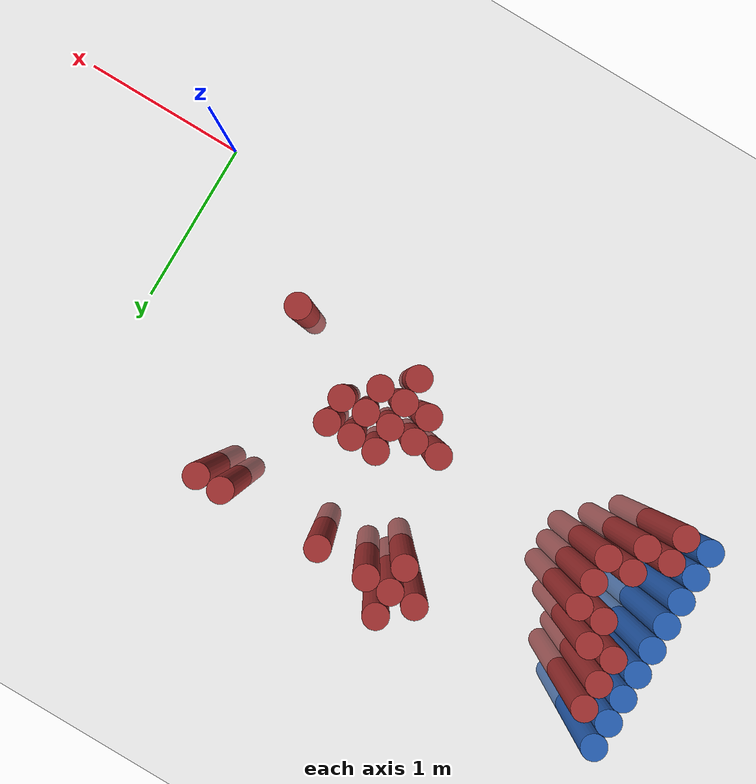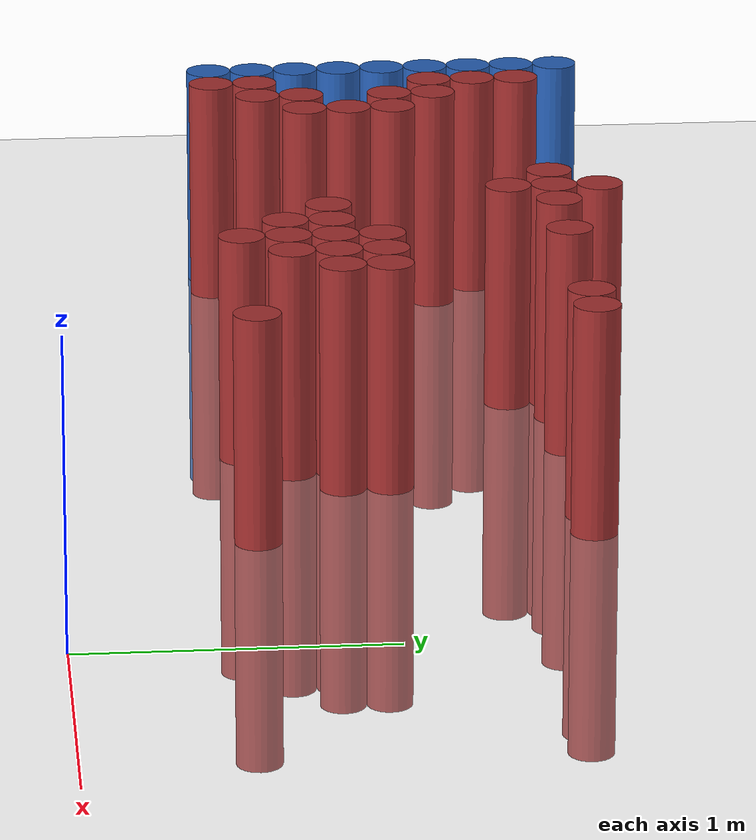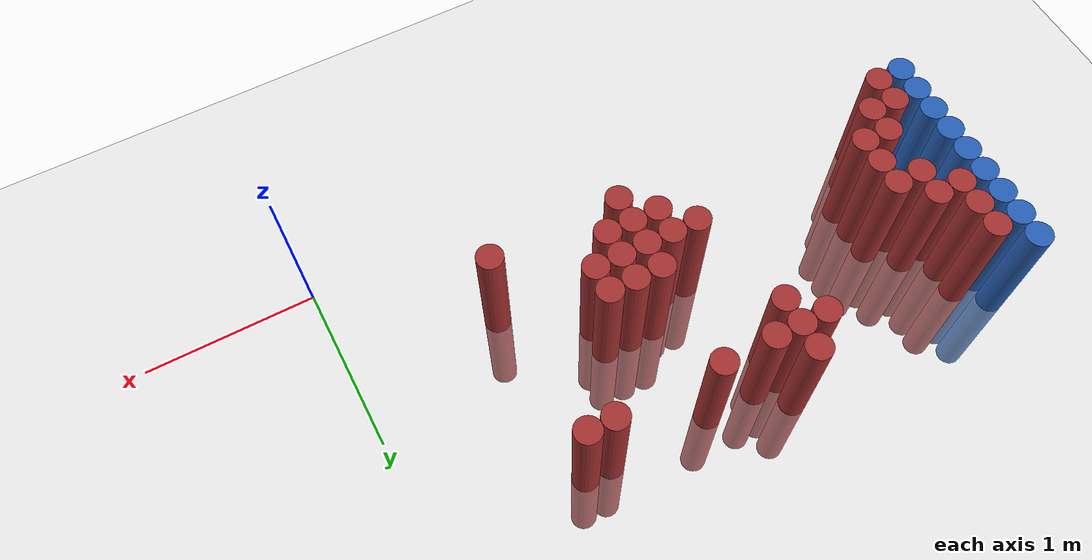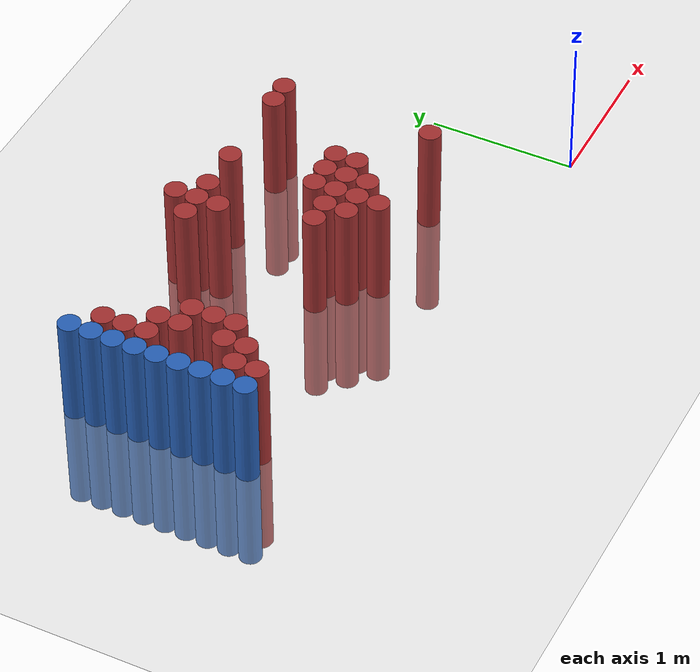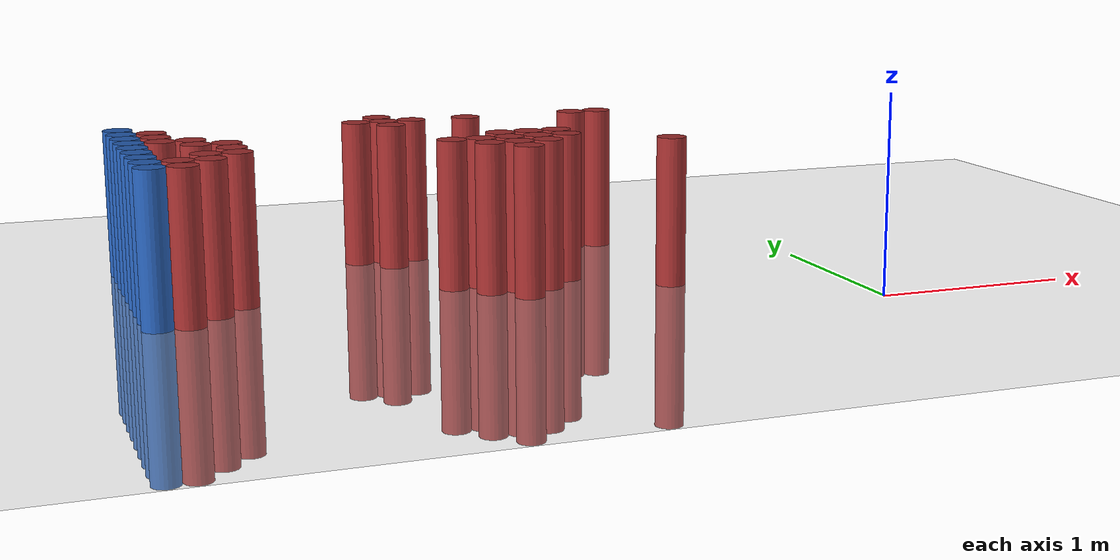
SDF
<sdf version="1.6">
 <world name="default">
  <model name="ground_plane">
   <static>1</static>
   <link name="link">
    <collision name="collision">
     <geometry><plane><normal>0 0 1</normal><size>100 100</size></plane></geometry>
     <surface><friction><ode><mu>100</mu><mu2>50</mu2></ode></friction></surface>
    </collision>
    <visual name="visual">
     <cast_shadows>0</cast_shadows>
     <geometry><plane><normal>0 0 1</normal><size>100 100</size></plane></geometry>
     <material>
      <script><uri>file://media/materials/scripts/gazebo.material</uri><name>Gazebo/Grey</name></script>
     </material>
    </visual>
   </link>
  </model>
  <model name="unit_cylinder_123">
   <static>1</static>
   <pose>-3.425000 0.625000 0.000000 0.000000 0.000000 0.000000</pose>
   <link name="link">
    <inertial>
     <mass>1</mass>
     <inertia><ixx>0.145833</ixx><ixy>0</ixy><ixz>0</ixz><iyy>0.145833</iyy><iyz>0</iyz><izz>0.125</izz></inertia>
    </inertial>
    <collision name="collision">
     <geometry><cylinder><radius>0.075000</radius><length>1.5</length></cylinder></geometry>
    </collision>
    <visual name="visual">
     <geometry><cylinder><radius>0.075000</radius><length>1.5</length></cylinder></geometry>
     <material>
      <ambient>0.152000 0.379000 0.720000 1</ambient>
      <diffuse>0.152000 0.379000 0.720000 1</diffuse>
     </material>
     <material>
      <script><name>Gazebo/Grey</name><uri>file://media/materials/scripts/gazebo.material</uri></script>
     </material>
    </visual>
   </link>
  </model>
  <model name="unit_cylinder_125">
   <static>1</static>
   <pose>-3.425000 0.775000 0.000000 0.000000 0.000000 0.000000</pose>
   <link name="link">
    <inertial>
     <mass>1</mass>
     <inertia><ixx>0.145833</ixx><ixy>0</ixy><ixz>0</ixz><iyy>0.145833</iyy><iyz>0</iyz><izz>0.125</izz></inertia>
    </inertial>
    <collision name="collision">
     <geometry><cylinder><radius>0.075000</radius><length>1.5</length></cylinder></geometry>
    </collision>
    <visual name="visual">
     <geometry><cylinder><radius>0.075000</radius><length>1.5</length></cylinder></geometry>
     <material>
      <ambient>0.152000 0.379000 0.720000 1</ambient>
      <diffuse>0.152000 0.379000 0.720000 1</diffuse>
     </material>
     <material>
      <script><name>Gazebo/Grey</name><uri>file://media/materials/scripts/gazebo.material</uri></script>
     </material>
    </visual>
   </link>
  </model>
  <model name="unit_cylinder_127">
   <static>1</static>
   <pose>-3.425000 0.925000 0.000000 0.000000 0.000000 0.000000</pose>
   <link name="link">
    <inertial>
     <mass>1</mass>
     <inertia><ixx>0.145833</ixx><ixy>0</ixy><ixz>0</ixz><iyy>0.145833</iyy><iyz>0</iyz><izz>0.125</izz></inertia>
    </inertial>
    <collision name="collision">
     <geometry><cylinder><radius>0.075000</radius><length>1.5</length></cylinder></geometry>
    </collision>
    <visual name="visual">
     <geometry><cylinder><radius>0.075000</radius><length>1.5</length></cylinder></geometry>
     <material>
      <ambient>0.152000 0.379000 0.720000 1</ambient>
      <diffuse>0.152000 0.379000 0.720000 1</diffuse>
     </material>
     <material>
      <script><name>Gazebo/Grey</name><uri>file://media/materials/scripts/gazebo.material</uri></script>
     </material>
    </visual>
   </link>
  </model>
  <model name="unit_cylinder_129">
   <static>1</static>
   <pose>-3.425000 1.075000 0.000000 0.000000 0.000000 0.000000</pose>
   <link name="link">
    <inertial>
     <mass>1</mass>
     <inertia><ixx>0.145833</ixx><ixy>0</ixy><ixz>0</ixz><iyy>0.145833</iyy><iyz>0</iyz><izz>0.125</izz></inertia>
    </inertial>
    <collision name="collision">
     <geometry><cylinder><radius>0.075000</radius><length>1.5</length></cylinder></geometry>
    </collision>
    <visual name="visual">
     <geometry><cylinder><radius>0.075000</radius><length>1.5</length></cylinder></geometry>
     <material>
      <ambient>0.152000 0.379000 0.720000 1</ambient>
      <diffuse>0.152000 0.379000 0.720000 1</diffuse>
     </material>
     <material>
      <script><name>Gazebo/Grey</name><uri>file://media/materials/scripts/gazebo.material</uri></script>
     </material>
    </visual>
   </link>
  </model>
  <model name="unit_cylinder_131">
   <static>1</static>
   <pose>-3.425000 1.225000 0.000000 0.000000 0.000000 0.000000</pose>
   <link name="link">
    <inertial>
     <mass>1</mass>
     <inertia><ixx>0.145833</ixx><ixy>0</ixy><ixz>0</ixz><iyy>0.145833</iyy><iyz>0</iyz><izz>0.125</izz></inertia>
    </inertial>
    <collision name="collision">
     <geometry><cylinder><radius>0.075000</radius><length>1.5</length></cylinder></geometry>
    </collision>
    <visual name="visual">
     <geometry><cylinder><radius>0.075000</radius><length>1.5</length></cylinder></geometry>
     <material>
      <ambient>0.152000 0.379000 0.720000 1</ambient>
      <diffuse>0.152000 0.379000 0.720000 1</diffuse>
     </material>
     <material>
      <script><name>Gazebo/Grey</name><uri>file://media/materials/scripts/gazebo.material</uri></script>
     </material>
    </visual>
   </link>
  </model>
  <model name="unit_cylinder_133">
   <static>1</static>
   <pose>-3.425000 1.375000 0.000000 0.000000 0.000000 0.000000</pose>
   <link name="link">
    <inertial>
     <mass>1</mass>
     <inertia><ixx>0.145833</ixx><ixy>0</ixy><ixz>0</ixz><iyy>0.145833</iyy><iyz>0</iyz><izz>0.125</izz></inertia>
    </inertial>
    <collision name="collision">
     <geometry><cylinder><radius>0.075000</radius><length>1.5</length></cylinder></geometry>
    </collision>
    <visual name="visual">
     <geometry><cylinder><radius>0.075000</radius><length>1.5</length></cylinder></geometry>
     <material>
      <ambient>0.152000 0.379000 0.720000 1</ambient>
      <diffuse>0.152000 0.379000 0.720000 1</diffuse>
     </material>
     <material>
      <script><name>Gazebo/Grey</name><uri>file://media/materials/scripts/gazebo.material</uri></script>
     </material>
    </visual>
   </link>
  </model>
  <model name="unit_cylinder_135">
   <static>1</static>
   <pose>-3.425000 1.525000 0.000000 0.000000 0.000000 0.000000</pose>
   <link name="link">
    <inertial>
     <mass>1</mass>
     <inertia><ixx>0.145833</ixx><ixy>0</ixy><ixz>0</ixz><iyy>0.145833</iyy><iyz>0</iyz><izz>0.125</izz></inertia>
    </inertial>
    <collision name="collision">
     <geometry><cylinder><radius>0.075000</radius><length>1.5</length></cylinder></geometry>
    </collision>
    <visual name="visual">
     <geometry><cylinder><radius>0.075000</radius><length>1.5</length></cylinder></geometry>
     <material>
      <ambient>0.152000 0.379000 0.720000 1</ambient>
      <diffuse>0.152000 0.379000 0.720000 1</diffuse>
     </material>
     <material>
      <script><name>Gazebo/Grey</name><uri>file://media/materials/scripts/gazebo.material</uri></script>
     </material>
    </visual>
   </link>
  </model>
  <model name="unit_cylinder_137">
   <static>1</static>
   <pose>-3.425000 1.675000 0.000000 0.000000 0.000000 0.000000</pose>
   <link name="link">
    <inertial>
     <mass>1</mass>
     <inertia><ixx>0.145833</ixx><ixy>0</ixy><ixz>0</ixz><iyy>0.145833</iyy><iyz>0</iyz><izz>0.125</izz></inertia>
    </inertial>
    <collision name="collision">
     <geometry><cylinder><radius>0.075000</radius><length>1.5</length></cylinder></geometry>
    </collision>
    <visual name="visual">
     <geometry><cylinder><radius>0.075000</radius><length>1.5</length></cylinder></geometry>
     <material>
      <ambient>0.152000 0.379000 0.720000 1</ambient>
      <diffuse>0.152000 0.379000 0.720000 1</diffuse>
     </material>
     <material>
      <script><name>Gazebo/Grey</name><uri>file://media/materials/scripts/gazebo.material</uri></script>
     </material>
    </visual>
   </link>
  </model>
  <model name="unit_cylinder_139">
   <static>1</static>
   <pose>-3.425000 1.825000 0.000000 0.000000 0.000000 0.000000</pose>
   <link name="link">
    <inertial>
     <mass>1</mass>
     <inertia><ixx>0.145833</ixx><ixy>0</ixy><ixz>0</ixz><iyy>0.145833</iyy><iyz>0</iyz><izz>0.125</izz></inertia>
    </inertial>
    <collision name="collision">
     <geometry><cylinder><radius>0.075000</radius><length>1.5</length></cylinder></geometry>
    </collision>
    <visual name="visual">
     <geometry><cylinder><radius>0.075000</radius><length>1.5</length></cylinder></geometry>
     <material>
      <ambient>0.152000 0.379000 0.720000 1</ambient>
      <diffuse>0.152000 0.379000 0.720000 1</diffuse>
     </material>
     <material>
      <script><name>Gazebo/Grey</name><uri>file://media/materials/scripts/gazebo.material</uri></script>
     </material>
    </visual>
   </link>
  </model>
  <model name="unit_cylinder_225">
   <static>1</static>
   <pose>-3.425000 0.625000 0.000000 0.000000 0.000000 0.000000</pose>
   <link name="link">
    <inertial>
     <mass>1</mass>
     <inertia><ixx>0.145833</ixx><ixy>0</ixy><ixz>0</ixz><iyy>0.145833</iyy><iyz>0</iyz><izz>0.125</izz></inertia>
    </inertial>
    <collision name="collision">
     <geometry><cylinder><radius>0.075000</radius><length>1.5</length></cylinder></geometry>
    </collision>
    <visual name="visual">
     <geometry><cylinder><radius>0.075000</radius><length>1.5</length></cylinder></geometry>
     <material>
      <ambient>0.152000 0.379000 0.720000 1</ambient>
      <diffuse>0.152000 0.379000 0.720000 1</diffuse>
     </material>
     <material>
      <script><name>Gazebo/Grey</name><uri>file://media/materials/scripts/gazebo.material</uri></script>
     </material>
    </visual>
   </link>
  </model>
  <model name="unit_cylinder_226">
   <static>1</static>
   <pose>-3.425000 0.775000 0.000000 0.000000 0.000000 0.000000</pose>
   <link name="link">
    <inertial>
     <mass>1</mass>
     <inertia><ixx>0.145833</ixx><ixy>0</ixy><ixz>0</ixz><iyy>0.145833</iyy><iyz>0</iyz><izz>0.125</izz></inertia>
    </inertial>
    <collision name="collision">
     <geometry><cylinder><radius>0.075000</radius><length>1.5</length></cylinder></geometry>
    </collision>
    <visual name="visual">
     <geometry><cylinder><radius>0.075000</radius><length>1.5</length></cylinder></geometry>
     <material>
      <ambient>0.152000 0.379000 0.720000 1</ambient>
      <diffuse>0.152000 0.379000 0.720000 1</diffuse>
     </material>
     <material>
      <script><name>Gazebo/Grey</name><uri>file://media/materials/scripts/gazebo.material</uri></script>
     </material>
    </visual>
   </link>
  </model>
  <model name="unit_cylinder_227">
   <static>1</static>
   <pose>-3.425000 0.925000 0.000000 0.000000 0.000000 0.000000</pose>
   <link name="link">
    <inertial>
     <mass>1</mass>
     <inertia><ixx>0.145833</ixx><ixy>0</ixy><ixz>0</ixz><iyy>0.145833</iyy><iyz>0</iyz><izz>0.125</izz></inertia>
    </inertial>
    <collision name="collision">
     <geometry><cylinder><radius>0.075000</radius><length>1.5</length></cylinder></geometry>
    </collision>
    <visual name="visual">
     <geometry><cylinder><radius>0.075000</radius><length>1.5</length></cylinder></geometry>
     <material>
      <ambient>0.152000 0.379000 0.720000 1</ambient>
      <diffuse>0.152000 0.379000 0.720000 1</diffuse>
     </material>
     <material>
      <script><name>Gazebo/Grey</name><uri>file://media/materials/scripts/gazebo.material</uri></script>
     </material>
    </visual>
   </link>
  </model>
  <model name="unit_cylinder_228">
   <static>1</static>
   <pose>-3.425000 1.075000 0.000000 0.000000 0.000000 0.000000</pose>
   <link name="link">
    <inertial>
     <mass>1</mass>
     <inertia><ixx>0.145833</ixx><ixy>0</ixy><ixz>0</ixz><iyy>0.145833</iyy><iyz>0</iyz><izz>0.125</izz></inertia>
    </inertial>
    <collision name="collision">
     <geometry><cylinder><radius>0.075000</radius><length>1.5</length></cylinder></geometry>
    </collision>
    <visual name="visual">
     <geometry><cylinder><radius>0.075000</radius><length>1.5</length></cylinder></geometry>
     <material>
      <ambient>0.152000 0.379000 0.720000 1</ambient>
      <diffuse>0.152000 0.379000 0.720000 1</diffuse>
     </material>
     <material>
      <script><name>Gazebo/Grey</name><uri>file://media/materials/scripts/gazebo.material</uri></script>
     </material>
    </visual>
   </link>
  </model>
  <model name="unit_cylinder_229">
   <static>1</static>
   <pose>-3.425000 1.225000 0.000000 0.000000 0.000000 0.000000</pose>
   <link name="link">
    <inertial>
     <mass>1</mass>
     <inertia><ixx>0.145833</ixx><ixy>0</ixy><ixz>0</ixz><iyy>0.145833</iyy><iyz>0</iyz><izz>0.125</izz></inertia>
    </inertial>
    <collision name="collision">
     <geometry><cylinder><radius>0.075000</radius><length>1.5</length></cylinder></geometry>
    </collision>
    <visual name="visual">
     <geometry><cylinder><radius>0.075000</radius><length>1.5</length></cylinder></geometry>
     <material>
      <ambient>0.152000 0.379000 0.720000 1</ambient>
      <diffuse>0.152000 0.379000 0.720000 1</diffuse>
     </material>
     <material>
      <script><name>Gazebo/Grey</name><uri>file://media/materials/scripts/gazebo.material</uri></script>
     </material>
    </visual>
   </link>
  </model>
  <model name="unit_cylinder_230">
   <static>1</static>
   <pose>-3.425000 1.375000 0.000000 0.000000 0.000000 0.000000</pose>
   <link name="link">
    <inertial>
     <mass>1</mass>
     <inertia><ixx>0.145833</ixx><ixy>0</ixy><ixz>0</ixz><iyy>0.145833</iyy><iyz>0</iyz><izz>0.125</izz></inertia>
    </inertial>
    <collision name="collision">
     <geometry><cylinder><radius>0.075000</radius><length>1.5</length></cylinder></geometry>
    </collision>
    <visual name="visual">
     <geometry><cylinder><radius>0.075000</radius><length>1.5</length></cylinder></geometry>
     <material>
      <ambient>0.152000 0.379000 0.720000 1</ambient>
      <diffuse>0.152000 0.379000 0.720000 1</diffuse>
     </material>
     <material>
      <script><name>Gazebo/Grey</name><uri>file://media/materials/scripts/gazebo.material</uri></script>
     </material>
    </visual>
   </link>
  </model>
  <model name="unit_cylinder_231">
   <static>1</static>
   <pose>-3.425000 1.525000 0.000000 0.000000 0.000000 0.000000</pose>
   <link name="link">
    <inertial>
     <mass>1</mass>
     <inertia><ixx>0.145833</ixx><ixy>0</ixy><ixz>0</ixz><iyy>0.145833</iyy><iyz>0</iyz><izz>0.125</izz></inertia>
    </inertial>
    <collision name="collision">
     <geometry><cylinder><radius>0.075000</radius><length>1.5</length></cylinder></geometry>
    </collision>
    <visual name="visual">
     <geometry><cylinder><radius>0.075000</radius><length>1.5</length></cylinder></geometry>
     <material>
      <ambient>0.152000 0.379000 0.720000 1</ambient>
      <diffuse>0.152000 0.379000 0.720000 1</diffuse>
     </material>
     <material>
      <script><name>Gazebo/Grey</name><uri>file://media/materials/scripts/gazebo.material</uri></script>
     </material>
    </visual>
   </link>
  </model>
  <model name="unit_cylinder_232">
   <static>1</static>
   <pose>-3.425000 1.675000 0.000000 0.000000 0.000000 0.000000</pose>
   <link name="link">
    <inertial>
     <mass>1</mass>
     <inertia><ixx>0.145833</ixx><ixy>0</ixy><ixz>0</ixz><iyy>0.145833</iyy><iyz>0</iyz><izz>0.125</izz></inertia>
    </inertial>
    <collision name="collision">
     <geometry><cylinder><radius>0.075000</radius><length>1.5</length></cylinder></geometry>
    </collision>
    <visual name="visual">
     <geometry><cylinder><radius>0.075000</radius><length>1.5</length></cylinder></geometry>
     <material>
      <ambient>0.152000 0.379000 0.720000 1</ambient>
      <diffuse>0.152000 0.379000 0.720000 1</diffuse>
     </material>
     <material>
      <script><name>Gazebo/Grey</name><uri>file://media/materials/scripts/gazebo.material</uri></script>
     </material>
    </visual>
   </link>
  </model>
  <model name="unit_cylinder_233">
   <static>1</static>
   <pose>-3.425000 1.825000 0.000000 0.000000 0.000000 0.000000</pose>
   <link name="link">
    <inertial>
     <mass>1</mass>
     <inertia><ixx>0.145833</ixx><ixy>0</ixy><ixz>0</ixz><iyy>0.145833</iyy><iyz>0</iyz><izz>0.125</izz></inertia>
    </inertial>
    <collision name="collision">
     <geometry><cylinder><radius>0.075000</radius><length>1.5</length></cylinder></geometry>
    </collision>
    <visual name="visual">
     <geometry><cylinder><radius>0.075000</radius><length>1.5</length></cylinder></geometry>
     <material>
      <ambient>0.152000 0.379000 0.720000 1</ambient>
      <diffuse>0.152000 0.379000 0.720000 1</diffuse>
     </material>
     <material>
      <script><name>Gazebo/Grey</name><uri>file://media/materials/scripts/gazebo.material</uri></script>
     </material>
    </visual>
   </link>
  </model>
  <model name="unit_cylinder_265">
   <static>1</static>
   <pose>-3.275000 0.625000 0.000000 0.000000 0.000000 0.000000</pose>
   <link name="link">
    <inertial>
     <mass>1</mass>
     <inertia><ixx>0.145833</ixx><ixy>0</ixy><ixz>0</ixz><iyy>0.145833</iyy><iyz>0</iyz><izz>0.125</izz></inertia>
    </inertial>
    <collision name="collision">
     <geometry><cylinder><radius>0.075000</radius><length>1.5</length></cylinder></geometry>
    </collision>
    <visual name="visual">
     <geometry><cylinder><radius>0.075000</radius><length>1.5</length></cylinder></geometry>
     <material>
      <ambient>0.648000 0.192000 0.192000 1</ambient>
      <diffuse>0.648000 0.192000 0.192000 1</diffuse>
     </material>
     <material>
      <script><name>Gazebo/Grey</name><uri>file://media/materials/scripts/gazebo.material</uri></script>
     </material>
    </visual>
   </link>
  </model>
  <model name="unit_cylinder_266">
   <static>1</static>
   <pose>-3.275000 0.775000 0.000000 0.000000 0.000000 0.000000</pose>
   <link name="link">
    <inertial>
     <mass>1</mass>
     <inertia><ixx>0.145833</ixx><ixy>0</ixy><ixz>0</ixz><iyy>0.145833</iyy><iyz>0</iyz><izz>0.125</izz></inertia>
    </inertial>
    <collision name="collision">
     <geometry><cylinder><radius>0.075000</radius><length>1.5</length></cylinder></geometry>
    </collision>
    <visual name="visual">
     <geometry><cylinder><radius>0.075000</radius><length>1.5</length></cylinder></geometry>
     <material>
      <ambient>0.648000 0.192000 0.192000 1</ambient>
      <diffuse>0.648000 0.192000 0.192000 1</diffuse>
     </material>
     <material>
      <script><name>Gazebo/Grey</name><uri>file://media/materials/scripts/gazebo.material</uri></script>
     </material>
    </visual>
   </link>
  </model>
  <model name="unit_cylinder_267">
   <static>1</static>
   <pose>-3.275000 1.375000 0.000000 0.000000 0.000000 0.000000</pose>
   <link name="link">
    <inertial>
     <mass>1</mass>
     <inertia><ixx>0.145833</ixx><ixy>0</ixy><ixz>0</ixz><iyy>0.145833</iyy><iyz>0</iyz><izz>0.125</izz></inertia>
    </inertial>
    <collision name="collision">
     <geometry><cylinder><radius>0.075000</radius><length>1.5</length></cylinder></geometry>
    </collision>
    <visual name="visual">
     <geometry><cylinder><radius>0.075000</radius><length>1.5</length></cylinder></geometry>
     <material>
      <ambient>0.648000 0.192000 0.192000 1</ambient>
      <diffuse>0.648000 0.192000 0.192000 1</diffuse>
     </material>
     <material>
      <script><name>Gazebo/Grey</name><uri>file://media/materials/scripts/gazebo.material</uri></script>
     </material>
    </visual>
   </link>
  </model>
  <model name="unit_cylinder_268">
   <static>1</static>
   <pose>-3.275000 1.525000 0.000000 0.000000 0.000000 0.000000</pose>
   <link name="link">
    <inertial>
     <mass>1</mass>
     <inertia><ixx>0.145833</ixx><ixy>0</ixy><ixz>0</ixz><iyy>0.145833</iyy><iyz>0</iyz><izz>0.125</izz></inertia>
    </inertial>
    <collision name="collision">
     <geometry><cylinder><radius>0.075000</radius><length>1.5</length></cylinder></geometry>
    </collision>
    <visual name="visual">
     <geometry><cylinder><radius>0.075000</radius><length>1.5</length></cylinder></geometry>
     <material>
      <ambient>0.648000 0.192000 0.192000 1</ambient>
      <diffuse>0.648000 0.192000 0.192000 1</diffuse>
     </material>
     <material>
      <script><name>Gazebo/Grey</name><uri>file://media/materials/scripts/gazebo.material</uri></script>
     </material>
    </visual>
   </link>
  </model>
  <model name="unit_cylinder_269">
   <static>1</static>
   <pose>-3.275000 1.675000 0.000000 0.000000 0.000000 0.000000</pose>
   <link name="link">
    <inertial>
     <mass>1</mass>
     <inertia><ixx>0.145833</ixx><ixy>0</ixy><ixz>0</ixz><iyy>0.145833</iyy><iyz>0</iyz><izz>0.125</izz></inertia>
    </inertial>
    <collision name="collision">
     <geometry><cylinder><radius>0.075000</radius><length>1.5</length></cylinder></geometry>
    </collision>
    <visual name="visual">
     <geometry><cylinder><radius>0.075000</radius><length>1.5</length></cylinder></geometry>
     <material>
      <ambient>0.648000 0.192000 0.192000 1</ambient>
      <diffuse>0.648000 0.192000 0.192000 1</diffuse>
     </material>
     <material>
      <script><name>Gazebo/Grey</name><uri>file://media/materials/scripts/gazebo.material</uri></script>
     </material>
    </visual>
   </link>
  </model>
  <model name="unit_cylinder_280">
   <static>1</static>
   <pose>-3.125000 0.775000 0.000000 0.000000 0.000000 0.000000</pose>
   <link name="link">
    <inertial>
     <mass>1</mass>
     <inertia><ixx>0.145833</ixx><ixy>0</ixy><ixz>0</ixz><iyy>0.145833</iyy><iyz>0</iyz><izz>0.125</izz></inertia>
    </inertial>
    <collision name="collision">
     <geometry><cylinder><radius>0.075000</radius><length>1.5</length></cylinder></geometry>
    </collision>
    <visual name="visual">
     <geometry><cylinder><radius>0.075000</radius><length>1.5</length></cylinder></geometry>
     <material>
      <ambient>0.648000 0.192000 0.192000 1</ambient>
      <diffuse>0.648000 0.192000 0.192000 1</diffuse>
     </material>
     <material>
      <script><name>Gazebo/Grey</name><uri>file://media/materials/scripts/gazebo.material</uri></script>
     </material>
    </visual>
   </link>
  </model>
  <model name="unit_cylinder_281">
   <static>1</static>
   <pose>-3.125000 0.925000 0.000000 0.000000 0.000000 0.000000</pose>
   <link name="link">
    <inertial>
     <mass>1</mass>
     <inertia><ixx>0.145833</ixx><ixy>0</ixy><ixz>0</ixz><iyy>0.145833</iyy><iyz>0</iyz><izz>0.125</izz></inertia>
    </inertial>
    <collision name="collision">
     <geometry><cylinder><radius>0.075000</radius><length>1.5</length></cylinder></geometry>
    </collision>
    <visual name="visual">
     <geometry><cylinder><radius>0.075000</radius><length>1.5</length></cylinder></geometry>
     <material>
      <ambient>0.648000 0.192000 0.192000 1</ambient>
      <diffuse>0.648000 0.192000 0.192000 1</diffuse>
     </material>
     <material>
      <script><name>Gazebo/Grey</name><uri>file://media/materials/scripts/gazebo.material</uri></script>
     </material>
    </visual>
   </link>
  </model>
  <model name="unit_cylinder_282">
   <static>1</static>
   <pose>-3.125000 1.225000 0.000000 0.000000 0.000000 0.000000</pose>
   <link name="link">
    <inertial>
     <mass>1</mass>
     <inertia><ixx>0.145833</ixx><ixy>0</ixy><ixz>0</ixz><iyy>0.145833</iyy><iyz>0</iyz><izz>0.125</izz></inertia>
    </inertial>
    <collision name="collision">
     <geometry><cylinder><radius>0.075000</radius><length>1.5</length></cylinder></geometry>
    </collision>
    <visual name="visual">
     <geometry><cylinder><radius>0.075000</radius><length>1.5</length></cylinder></geometry>
     <material>
      <ambient>0.648000 0.192000 0.192000 1</ambient>
      <diffuse>0.648000 0.192000 0.192000 1</diffuse>
     </material>
     <material>
      <script><name>Gazebo/Grey</name><uri>file://media/materials/scripts/gazebo.material</uri></script>
     </material>
    </visual>
   </link>
  </model>
  <model name="unit_cylinder_283">
   <static>1</static>
   <pose>-3.125000 1.375000 0.000000 0.000000 0.000000 0.000000</pose>
   <link name="link">
    <inertial>
     <mass>1</mass>
     <inertia><ixx>0.145833</ixx><ixy>0</ixy><ixz>0</ixz><iyy>0.145833</iyy><iyz>0</iyz><izz>0.125</izz></inertia>
    </inertial>
    <collision name="collision">
     <geometry><cylinder><radius>0.075000</radius><length>1.5</length></cylinder></geometry>
    </collision>
    <visual name="visual">
     <geometry><cylinder><radius>0.075000</radius><length>1.5</length></cylinder></geometry>
     <material>
      <ambient>0.648000 0.192000 0.192000 1</ambient>
      <diffuse>0.648000 0.192000 0.192000 1</diffuse>
     </material>
     <material>
      <script><name>Gazebo/Grey</name><uri>file://media/materials/scripts/gazebo.material</uri></script>
     </material>
    </visual>
   </link>
  </model>
  <model name="unit_cylinder_294">
   <static>1</static>
   <pose>-2.975000 0.925000 0.000000 0.000000 0.000000 0.000000</pose>
   <link name="link">
    <inertial>
     <mass>1</mass>
     <inertia><ixx>0.145833</ixx><ixy>0</ixy><ixz>0</ixz><iyy>0.145833</iyy><iyz>0</iyz><izz>0.125</izz></inertia>
    </inertial>
    <collision name="collision">
     <geometry><cylinder><radius>0.075000</radius><length>1.5</length></cylinder></geometry>
    </collision>
    <visual name="visual">
     <geometry><cylinder><radius>0.075000</radius><length>1.5</length></cylinder></geometry>
     <material>
      <ambient>0.648000 0.192000 0.192000 1</ambient>
      <diffuse>0.648000 0.192000 0.192000 1</diffuse>
     </material>
     <material>
      <script><name>Gazebo/Grey</name><uri>file://media/materials/scripts/gazebo.material</uri></script>
     </material>
    </visual>
   </link>
  </model>
  <model name="unit_cylinder_295">
   <static>1</static>
   <pose>-2.975000 1.075000 0.000000 0.000000 0.000000 0.000000</pose>
   <link name="link">
    <inertial>
     <mass>1</mass>
     <inertia><ixx>0.145833</ixx><ixy>0</ixy><ixz>0</ixz><iyy>0.145833</iyy><iyz>0</iyz><izz>0.125</izz></inertia>
    </inertial>
    <collision name="collision">
     <geometry><cylinder><radius>0.075000</radius><length>1.5</length></cylinder></geometry>
    </collision>
    <visual name="visual">
     <geometry><cylinder><radius>0.075000</radius><length>1.5</length></cylinder></geometry>
     <material>
      <ambient>0.648000 0.192000 0.192000 1</ambient>
      <diffuse>0.648000 0.192000 0.192000 1</diffuse>
     </material>
     <material>
      <script><name>Gazebo/Grey</name><uri>file://media/materials/scripts/gazebo.material</uri></script>
     </material>
    </visual>
   </link>
  </model>
  <model name="unit_cylinder_296">
   <static>1</static>
   <pose>-2.975000 1.225000 0.000000 0.000000 0.000000 0.000000</pose>
   <link name="link">
    <inertial>
     <mass>1</mass>
     <inertia><ixx>0.145833</ixx><ixy>0</ixy><ixz>0</ixz><iyy>0.145833</iyy><iyz>0</iyz><izz>0.125</izz></inertia>
    </inertial>
    <collision name="collision">
     <geometry><cylinder><radius>0.075000</radius><length>1.5</length></cylinder></geometry>
    </collision>
    <visual name="visual">
     <geometry><cylinder><radius>0.075000</radius><length>1.5</length></cylinder></geometry>
     <material>
      <ambient>0.648000 0.192000 0.192000 1</ambient>
      <diffuse>0.648000 0.192000 0.192000 1</diffuse>
     </material>
     <material>
      <script><name>Gazebo/Grey</name><uri>file://media/materials/scripts/gazebo.material</uri></script>
     </material>
    </visual>
   </link>
  </model>
  <model name="unit_cylinder_315">
   <static>1</static>
   <pose>-2.225000 1.675000 0.000000 0.000000 0.000000 0.000000</pose>
   <link name="link">
    <inertial>
     <mass>1</mass>
     <inertia><ixx>0.145833</ixx><ixy>0</ixy><ixz>0</ixz><iyy>0.145833</iyy><iyz>0</iyz><izz>0.125</izz></inertia>
    </inertial>
    <collision name="collision">
     <geometry><cylinder><radius>0.075000</radius><length>1.5</length></cylinder></geometry>
    </collision>
    <visual name="visual">
     <geometry><cylinder><radius>0.075000</radius><length>1.5</length></cylinder></geometry>
     <material>
      <ambient>0.648000 0.192000 0.192000 1</ambient>
      <diffuse>0.648000 0.192000 0.192000 1</diffuse>
     </material>
     <material>
      <script><name>Gazebo/Grey</name><uri>file://media/materials/scripts/gazebo.material</uri></script>
     </material>
    </visual>
   </link>
  </model>
  <model name="unit_cylinder_318">
   <static>1</static>
   <pose>-2.075000 1.525000 0.000000 0.000000 0.000000 0.000000</pose>
   <link name="link">
    <inertial>
     <mass>1</mass>
     <inertia><ixx>0.145833</ixx><ixy>0</ixy><ixz>0</ixz><iyy>0.145833</iyy><iyz>0</iyz><izz>0.125</izz></inertia>
    </inertial>
    <collision name="collision">
     <geometry><cylinder><radius>0.075000</radius><length>1.5</length></cylinder></geometry>
    </collision>
    <visual name="visual">
     <geometry><cylinder><radius>0.075000</radius><length>1.5</length></cylinder></geometry>
     <material>
      <ambient>0.648000 0.192000 0.192000 1</ambient>
      <diffuse>0.648000 0.192000 0.192000 1</diffuse>
     </material>
     <material>
      <script><name>Gazebo/Grey</name><uri>file://media/materials/scripts/gazebo.material</uri></script>
     </material>
    </visual>
   </link>
  </model>
  <model name="unit_cylinder_319">
   <static>1</static>
   <pose>-2.075000 1.675000 0.000000 0.000000 0.000000 0.000000</pose>
   <link name="link">
    <inertial>
     <mass>1</mass>
     <inertia><ixx>0.145833</ixx><ixy>0</ixy><ixz>0</ixz><iyy>0.145833</iyy><iyz>0</iyz><izz>0.125</izz></inertia>
    </inertial>
    <collision name="collision">
     <geometry><cylinder><radius>0.075000</radius><length>1.5</length></cylinder></geometry>
    </collision>
    <visual name="visual">
     <geometry><cylinder><radius>0.075000</radius><length>1.5</length></cylinder></geometry>
     <material>
      <ambient>0.648000 0.192000 0.192000 1</ambient>
      <diffuse>0.648000 0.192000 0.192000 1</diffuse>
     </material>
     <material>
      <script><name>Gazebo/Grey</name><uri>file://media/materials/scripts/gazebo.material</uri></script>
     </material>
    </visual>
   </link>
  </model>
  <model name="unit_cylinder_320">
   <static>1</static>
   <pose>-2.075000 1.825000 0.000000 0.000000 0.000000 0.000000</pose>
   <link name="link">
    <inertial>
     <mass>1</mass>
     <inertia><ixx>0.145833</ixx><ixy>0</ixy><ixz>0</ixz><iyy>0.145833</iyy><iyz>0</iyz><izz>0.125</izz></inertia>
    </inertial>
    <collision name="collision">
     <geometry><cylinder><radius>0.075000</radius><length>1.5</length></cylinder></geometry>
    </collision>
    <visual name="visual">
     <geometry><cylinder><radius>0.075000</radius><length>1.5</length></cylinder></geometry>
     <material>
      <ambient>0.648000 0.192000 0.192000 1</ambient>
      <diffuse>0.648000 0.192000 0.192000 1</diffuse>
     </material>
     <material>
      <script><name>Gazebo/Grey</name><uri>file://media/materials/scripts/gazebo.material</uri></script>
     </material>
    </visual>
   </link>
  </model>
  <model name="unit_cylinder_325">
   <static>1</static>
   <pose>-1.925000 0.925000 0.000000 0.000000 0.000000 0.000000</pose>
   <link name="link">
    <inertial>
     <mass>1</mass>
     <inertia><ixx>0.145833</ixx><ixy>0</ixy><ixz>0</ixz><iyy>0.145833</iyy><iyz>0</iyz><izz>0.125</izz></inertia>
    </inertial>
    <collision name="collision">
     <geometry><cylinder><radius>0.075000</radius><length>1.5</length></cylinder></geometry>
    </collision>
    <visual name="visual">
     <geometry><cylinder><radius>0.075000</radius><length>1.5</length></cylinder></geometry>
     <material>
      <ambient>0.648000 0.192000 0.192000 1</ambient>
      <diffuse>0.648000 0.192000 0.192000 1</diffuse>
     </material>
     <material>
      <script><name>Gazebo/Grey</name><uri>file://media/materials/scripts/gazebo.material</uri></script>
     </material>
    </visual>
   </link>
  </model>
  <model name="unit_cylinder_326">
   <static>1</static>
   <pose>-1.925000 1.675000 0.000000 0.000000 0.000000 0.000000</pose>
   <link name="link">
    <inertial>
     <mass>1</mass>
     <inertia><ixx>0.145833</ixx><ixy>0</ixy><ixz>0</ixz><iyy>0.145833</iyy><iyz>0</iyz><izz>0.125</izz></inertia>
    </inertial>
    <collision name="collision">
     <geometry><cylinder><radius>0.075000</radius><length>1.5</length></cylinder></geometry>
    </collision>
    <visual name="visual">
     <geometry><cylinder><radius>0.075000</radius><length>1.5</length></cylinder></geometry>
     <material>
      <ambient>0.648000 0.192000 0.192000 1</ambient>
      <diffuse>0.648000 0.192000 0.192000 1</diffuse>
     </material>
     <material>
      <script><name>Gazebo/Grey</name><uri>file://media/materials/scripts/gazebo.material</uri></script>
     </material>
    </visual>
   </link>
  </model>
  <model name="unit_cylinder_335">
   <static>1</static>
   <pose>-1.775000 0.775000 0.000000 0.000000 0.000000 0.000000</pose>
   <link name="link">
    <inertial>
     <mass>1</mass>
     <inertia><ixx>0.145833</ixx><ixy>0</ixy><ixz>0</ixz><iyy>0.145833</iyy><iyz>0</iyz><izz>0.125</izz></inertia>
    </inertial>
    <collision name="collision">
     <geometry><cylinder><radius>0.075000</radius><length>1.5</length></cylinder></geometry>
    </collision>
    <visual name="visual">
     <geometry><cylinder><radius>0.075000</radius><length>1.5</length></cylinder></geometry>
     <material>
      <ambient>0.648000 0.192000 0.192000 1</ambient>
      <diffuse>0.648000 0.192000 0.192000 1</diffuse>
     </material>
     <material>
      <script><name>Gazebo/Grey</name><uri>file://media/materials/scripts/gazebo.material</uri></script>
     </material>
    </visual>
   </link>
  </model>
  <model name="unit_cylinder_336">
   <static>1</static>
   <pose>-1.775000 0.925000 0.000000 0.000000 0.000000 0.000000</pose>
   <link name="link">
    <inertial>
     <mass>1</mass>
     <inertia><ixx>0.145833</ixx><ixy>0</ixy><ixz>0</ixz><iyy>0.145833</iyy><iyz>0</iyz><izz>0.125</izz></inertia>
    </inertial>
    <collision name="collision">
     <geometry><cylinder><radius>0.075000</radius><length>1.5</length></cylinder></geometry>
    </collision>
    <visual name="visual">
     <geometry><cylinder><radius>0.075000</radius><length>1.5</length></cylinder></geometry>
     <material>
      <ambient>0.648000 0.192000 0.192000 1</ambient>
      <diffuse>0.648000 0.192000 0.192000 1</diffuse>
     </material>
     <material>
      <script><name>Gazebo/Grey</name><uri>file://media/materials/scripts/gazebo.material</uri></script>
     </material>
    </visual>
   </link>
  </model>
  <model name="unit_cylinder_345">
   <static>1</static>
   <pose>-1.625000 0.625000 0.000000 0.000000 0.000000 0.000000</pose>
   <link name="link">
    <inertial>
     <mass>1</mass>
     <inertia><ixx>0.145833</ixx><ixy>0</ixy><ixz>0</ixz><iyy>0.145833</iyy><iyz>0</iyz><izz>0.125</izz></inertia>
    </inertial>
    <collision name="collision">
     <geometry><cylinder><radius>0.075000</radius><length>1.5</length></cylinder></geometry>
    </collision>
    <visual name="visual">
     <geometry><cylinder><radius>0.075000</radius><length>1.5</length></cylinder></geometry>
     <material>
      <ambient>0.648000 0.192000 0.192000 1</ambient>
      <diffuse>0.648000 0.192000 0.192000 1</diffuse>
     </material>
     <material>
      <script><name>Gazebo/Grey</name><uri>file://media/materials/scripts/gazebo.material</uri></script>
     </material>
    </visual>
   </link>
  </model>
  <model name="unit_cylinder_346">
   <static>1</static>
   <pose>-1.625000 0.775000 0.000000 0.000000 0.000000 0.000000</pose>
   <link name="link">
    <inertial>
     <mass>1</mass>
     <inertia><ixx>0.145833</ixx><ixy>0</ixy><ixz>0</ixz><iyy>0.145833</iyy><iyz>0</iyz><izz>0.125</izz></inertia>
    </inertial>
    <collision name="collision">
     <geometry><cylinder><radius>0.075000</radius><length>1.5</length></cylinder></geometry>
    </collision>
    <visual name="visual">
     <geometry><cylinder><radius>0.075000</radius><length>1.5</length></cylinder></geometry>
     <material>
      <ambient>0.648000 0.192000 0.192000 1</ambient>
      <diffuse>0.648000 0.192000 0.192000 1</diffuse>
     </material>
     <material>
      <script><name>Gazebo/Grey</name><uri>file://media/materials/scripts/gazebo.material</uri></script>
     </material>
    </visual>
   </link>
  </model>
  <model name="unit_cylinder_347">
   <static>1</static>
   <pose>-1.625000 0.925000 0.000000 0.000000 0.000000 0.000000</pose>
   <link name="link">
    <inertial>
     <mass>1</mass>
     <inertia><ixx>0.145833</ixx><ixy>0</ixy><ixz>0</ixz><iyy>0.145833</iyy><iyz>0</iyz><izz>0.125</izz></inertia>
    </inertial>
    <collision name="collision">
     <geometry><cylinder><radius>0.075000</radius><length>1.5</length></cylinder></geometry>
    </collision>
    <visual name="visual">
     <geometry><cylinder><radius>0.075000</radius><length>1.5</length></cylinder></geometry>
     <material>
      <ambient>0.648000 0.192000 0.192000 1</ambient>
      <diffuse>0.648000 0.192000 0.192000 1</diffuse>
     </material>
     <material>
      <script><name>Gazebo/Grey</name><uri>file://media/materials/scripts/gazebo.material</uri></script>
     </material>
    </visual>
   </link>
  </model>
  <model name="unit_cylinder_348">
   <static>1</static>
   <pose>-1.625000 1.075000 0.000000 0.000000 0.000000 0.000000</pose>
   <link name="link">
    <inertial>
     <mass>1</mass>
     <inertia><ixx>0.145833</ixx><ixy>0</ixy><ixz>0</ixz><iyy>0.145833</iyy><iyz>0</iyz><izz>0.125</izz></inertia>
    </inertial>
    <collision name="collision">
     <geometry><cylinder><radius>0.075000</radius><length>1.5</length></cylinder></geometry>
    </collision>
    <visual name="visual">
     <geometry><cylinder><radius>0.075000</radius><length>1.5</length></cylinder></geometry>
     <material>
      <ambient>0.648000 0.192000 0.192000 1</ambient>
      <diffuse>0.648000 0.192000 0.192000 1</diffuse>
     </material>
     <material>
      <script><name>Gazebo/Grey</name><uri>file://media/materials/scripts/gazebo.material</uri></script>
     </material>
    </visual>
   </link>
  </model>
  <model name="unit_cylinder_349">
   <static>1</static>
   <pose>-1.625000 1.675000 0.000000 0.000000 0.000000 0.000000</pose>
   <link name="link">
    <inertial>
     <mass>1</mass>
     <inertia><ixx>0.145833</ixx><ixy>0</ixy><ixz>0</ixz><iyy>0.145833</iyy><iyz>0</iyz><izz>0.125</izz></inertia>
    </inertial>
    <collision name="collision">
     <geometry><cylinder><radius>0.075000</radius><length>1.5</length></cylinder></geometry>
    </collision>
    <visual name="visual">
     <geometry><cylinder><radius>0.075000</radius><length>1.5</length></cylinder></geometry>
     <material>
      <ambient>0.648000 0.192000 0.192000 1</ambient>
      <diffuse>0.648000 0.192000 0.192000 1</diffuse>
     </material>
     <material>
      <script><name>Gazebo/Grey</name><uri>file://media/materials/scripts/gazebo.material</uri></script>
     </material>
    </visual>
   </link>
  </model>
  <model name="unit_cylinder_357">
   <static>1</static>
   <pose>-1.475000 0.775000 0.000000 0.000000 0.000000 0.000000</pose>
   <link name="link">
    <inertial>
     <mass>1</mass>
     <inertia><ixx>0.145833</ixx><ixy>0</ixy><ixz>0</ixz><iyy>0.145833</iyy><iyz>0</iyz><izz>0.125</izz></inertia>
    </inertial>
    <collision name="collision">
     <geometry><cylinder><radius>0.075000</radius><length>1.5</length></cylinder></geometry>
    </collision>
    <visual name="visual">
     <geometry><cylinder><radius>0.075000</radius><length>1.5</length></cylinder></geometry>
     <material>
      <ambient>0.648000 0.192000 0.192000 1</ambient>
      <diffuse>0.648000 0.192000 0.192000 1</diffuse>
     </material>
     <material>
      <script><name>Gazebo/Grey</name><uri>file://media/materials/scripts/gazebo.material</uri></script>
     </material>
    </visual>
   </link>
  </model>
  <model name="unit_cylinder_358">
   <static>1</static>
   <pose>-1.475000 0.925000 0.000000 0.000000 0.000000 0.000000</pose>
   <link name="link">
    <inertial>
     <mass>1</mass>
     <inertia><ixx>0.145833</ixx><ixy>0</ixy><ixz>0</ixz><iyy>0.145833</iyy><iyz>0</iyz><izz>0.125</izz></inertia>
    </inertial>
    <collision name="collision">
     <geometry><cylinder><radius>0.075000</radius><length>1.5</length></cylinder></geometry>
    </collision>
    <visual name="visual">
     <geometry><cylinder><radius>0.075000</radius><length>1.5</length></cylinder></geometry>
     <material>
      <ambient>0.648000 0.192000 0.192000 1</ambient>
      <diffuse>0.648000 0.192000 0.192000 1</diffuse>
     </material>
     <material>
      <script><name>Gazebo/Grey</name><uri>file://media/materials/scripts/gazebo.material</uri></script>
     </material>
    </visual>
   </link>
  </model>
  <model name="unit_cylinder_359">
   <static>1</static>
   <pose>-1.475000 1.075000 0.000000 0.000000 0.000000 0.000000</pose>
   <link name="link">
    <inertial>
     <mass>1</mass>
     <inertia><ixx>0.145833</ixx><ixy>0</ixy><ixz>0</ixz><iyy>0.145833</iyy><iyz>0</iyz><izz>0.125</izz></inertia>
    </inertial>
    <collision name="collision">
     <geometry><cylinder><radius>0.075000</radius><length>1.5</length></cylinder></geometry>
    </collision>
    <visual name="visual">
     <geometry><cylinder><radius>0.075000</radius><length>1.5</length></cylinder></geometry>
     <material>
      <ambient>0.648000 0.192000 0.192000 1</ambient>
      <diffuse>0.648000 0.192000 0.192000 1</diffuse>
     </material>
     <material>
      <script><name>Gazebo/Grey</name><uri>file://media/materials/scripts/gazebo.material</uri></script>
     </material>
    </visual>
   </link>
  </model>
  <model name="unit_cylinder_362">
   <static>1</static>
   <pose>-1.325000 0.925000 0.000000 0.000000 0.000000 0.000000</pose>
   <link name="link">
    <inertial>
     <mass>1</mass>
     <inertia><ixx>0.145833</ixx><ixy>0</ixy><ixz>0</ixz><iyy>0.145833</iyy><iyz>0</iyz><izz>0.125</izz></inertia>
    </inertial>
    <collision name="collision">
     <geometry><cylinder><radius>0.075000</radius><length>1.5</length></cylinder></geometry>
    </collision>
    <visual name="visual">
     <geometry><cylinder><radius>0.075000</radius><length>1.5</length></cylinder></geometry>
     <material>
      <ambient>0.648000 0.192000 0.192000 1</ambient>
      <diffuse>0.648000 0.192000 0.192000 1</diffuse>
     </material>
     <material>
      <script><name>Gazebo/Grey</name><uri>file://media/materials/scripts/gazebo.material</uri></script>
     </material>
    </visual>
   </link>
  </model>
  <model name="unit_cylinder_363">
   <static>1</static>
   <pose>-1.325000 1.075000 0.000000 0.000000 0.000000 0.000000</pose>
   <link name="link">
    <inertial>
     <mass>1</mass>
     <inertia><ixx>0.145833</ixx><ixy>0</ixy><ixz>0</ixz><iyy>0.145833</iyy><iyz>0</iyz><izz>0.125</izz></inertia>
    </inertial>
    <collision name="collision">
     <geometry><cylinder><radius>0.075000</radius><length>1.5</length></cylinder></geometry>
    </collision>
    <visual name="visual">
     <geometry><cylinder><radius>0.075000</radius><length>1.5</length></cylinder></geometry>
     <material>
      <ambient>0.648000 0.192000 0.192000 1</ambient>
      <diffuse>0.648000 0.192000 0.192000 1</diffuse>
     </material>
     <material>
      <script><name>Gazebo/Grey</name><uri>file://media/materials/scripts/gazebo.material</uri></script>
     </material>
    </visual>
   </link>
  </model>
  <model name="unit_cylinder_377">
   <static>1</static>
   <pose>-1.025000 1.675000 0.000000 0.000000 0.000000 0.000000</pose>
   <link name="link">
    <inertial>
     <mass>1</mass>
     <inertia><ixx>0.145833</ixx><ixy>0</ixy><ixz>0</ixz><iyy>0.145833</iyy><iyz>0</iyz><izz>0.125</izz></inertia>
    </inertial>
    <collision name="collision">
     <geometry><cylinder><radius>0.075000</radius><length>1.5</length></cylinder></geometry>
    </collision>
    <visual name="visual">
     <geometry><cylinder><radius>0.075000</radius><length>1.5</length></cylinder></geometry>
     <material>
      <ambient>0.648000 0.192000 0.192000 1</ambient>
      <diffuse>0.648000 0.192000 0.192000 1</diffuse>
     </material>
     <material>
      <script><name>Gazebo/Grey</name><uri>file://media/materials/scripts/gazebo.material</uri></script>
     </material>
    </visual>
   </link>
  </model>
  <model name="unit_cylinder_385">
   <static>1</static>
   <pose>-0.875000 0.625000 0.000000 0.000000 0.000000 0.000000</pose>
   <link name="link">
    <inertial>
     <mass>1</mass>
     <inertia><ixx>0.145833</ixx><ixy>0</ixy><ixz>0</ixz><iyy>0.145833</iyy><iyz>0</iyz><izz>0.125</izz></inertia>
    </inertial>
    <collision name="collision">
     <geometry><cylinder><radius>0.075000</radius><length>1.5</length></cylinder></geometry>
    </collision>
    <visual name="visual">
     <geometry><cylinder><radius>0.075000</radius><length>1.5</length></cylinder></geometry>
     <material>
      <ambient>0.648000 0.192000 0.192000 1</ambient>
      <diffuse>0.648000 0.192000 0.192000 1</diffuse>
     </material>
     <material>
      <script><name>Gazebo/Grey</name><uri>file://media/materials/scripts/gazebo.material</uri></script>
     </material>
    </visual>
   </link>
  </model>
  <model name="unit_cylinder_386">
   <static>1</static>
   <pose>-0.875000 1.675000 0.000000 0.000000 0.000000 0.000000</pose>
   <link name="link">
    <inertial>
     <mass>1</mass>
     <inertia><ixx>0.145833</ixx><ixy>0</ixy><ixz>0</ixz><iyy>0.145833</iyy><iyz>0</iyz><izz>0.125</izz></inertia>
    </inertial>
    <collision name="collision">
     <geometry><cylinder><radius>0.075000</radius><length>1.5</length></cylinder></geometry>
    </collision>
    <visual name="visual">
     <geometry><cylinder><radius>0.075000</radius><length>1.5</length></cylinder></geometry>
     <material>
      <ambient>0.648000 0.192000 0.192000 1</ambient>
      <diffuse>0.648000 0.192000 0.192000 1</diffuse>
     </material>
     <material>
      <script><name>Gazebo/Grey</name><uri>file://media/materials/scripts/gazebo.material</uri></script>
     </material>
    </visual>
   </link>
  </model>
 </world>
</sdf>
